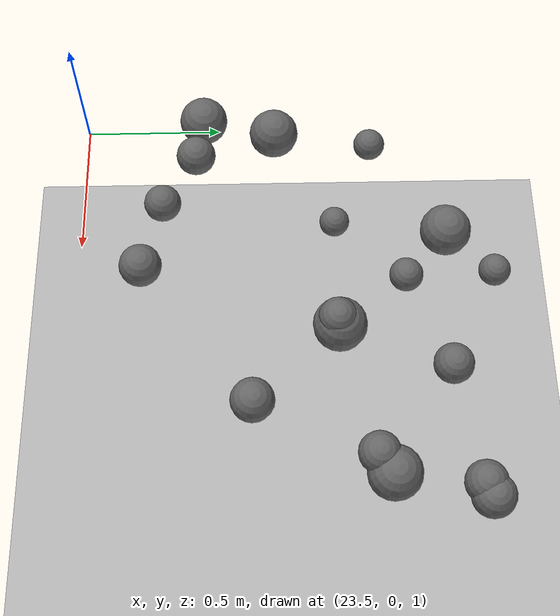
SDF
<sdf version="1.8">
 <world name="extreme_disturbance_parkour">
  <model name="ground_plane">
   <static>true</static>
   <link name="link">
    <collision name="collision">
     <geometry><plane><normal>0 0 1</normal><size>100 100</size></plane></geometry>
     <surface><friction><ode><mu>1.5</mu><mu2>1.5</mu2></ode></friction></surface>
    </collision>
    <visual name="visual">
     <geometry><plane><normal>0 0 1</normal><size>100 100</size></plane></geometry>
     <material><ambient>0.7 0.7 0.7 1</ambient><diffuse>0.7 0.7 0.7 1</diffuse></material>
    </visual>
   </link>
  </model>
  <model name="stone_248">
   <static>true</static>
   <pose>24.3850 0.9309 1.1116 -0.0700 0.1000 0.0000</pose>
   <link name="link">
    <collision name="collision">
     <geometry><sphere><radius>0.0949</radius></sphere></geometry>
     <surface><friction><ode><mu>100.0</mu><mu2>100.0</mu2></ode></friction></surface>
    </collision>
    <visual name="visual">
     <geometry><sphere><radius>0.0949</radius></sphere></geometry>
     <material><ambient>0.3 0.3 0.3 1</ambient><diffuse>0.4 0.4 0.4 1</diffuse></material>
    </visual>
   </link>
  </model>
  <model name="stone_253">
   <static>true</static>
   <pose>23.6235 0.4578 1.2476 -0.0700 0.1000 0.0000</pose>
   <link name="link">
    <collision name="collision">
     <geometry><sphere><radius>0.0852</radius></sphere></geometry>
     <surface><friction><ode><mu>100.0</mu><mu2>100.0</mu2></ode></friction></surface>
    </collision>
    <visual name="visual">
     <geometry><sphere><radius>0.0852</radius></sphere></geometry>
     <material><ambient>0.3 0.3 0.3 1</ambient><diffuse>0.4 0.4 0.4 1</diffuse></material>
    </visual>
   </link>
  </model>
  <model name="stone_256">
   <static>true</static>
   <pose>24.8416 1.0445 1.0904 -0.0700 0.1000 0.0000</pose>
   <link name="link">
    <collision name="collision">
     <geometry><sphere><radius>0.0727</radius></sphere></geometry>
     <surface><friction><ode><mu>100.0</mu><mu2>100.0</mu2></ode></friction></surface>
    </collision>
    <visual name="visual">
     <geometry><sphere><radius>0.0727</radius></sphere></geometry>
     <material><ambient>0.3 0.3 0.3 1</ambient><diffuse>0.4 0.4 0.4 1</diffuse></material>
    </visual>
   </link>
  </model>
  <model name="stone_262">
   <static>true</static>
   <pose>24.1927 1.4790 1.1309 -0.0700 0.1000 0.0000</pose>
   <link name="link">
    <collision name="collision">
     <geometry><sphere><radius>0.0563</radius></sphere></geometry>
     <surface><friction><ode><mu>100.0</mu><mu2>100.0</mu2></ode></friction></surface>
    </collision>
    <visual name="visual">
     <geometry><sphere><radius>0.0563</radius></sphere></geometry>
     <material><ambient>0.3 0.3 0.3 1</ambient><diffuse>0.4 0.4 0.4 1</diffuse></material>
    </visual>
   </link>
  </model>
  <model name="stone_263">
   <static>true</static>
   <pose>24.3793 0.9228 1.1585 -0.0700 0.1000 0.0000</pose>
   <link name="link">
    <collision name="collision">
     <geometry><sphere><radius>0.0684</radius></sphere></geometry>
     <surface><friction><ode><mu>100.0</mu><mu2>100.0</mu2></ode></friction></surface>
    </collision>
    <visual name="visual">
     <geometry><sphere><radius>0.0684</radius></sphere></geometry>
     <material><ambient>0.3 0.3 0.3 1</ambient><diffuse>0.4 0.4 0.4 1</diffuse></material>
    </visual>
   </link>
  </model>
  <model name="stone_283">
   <static>true</static>
   <pose>23.6668 0.7110 1.2252 -0.0700 0.1000 0.0000</pose>
   <link name="link">
    <collision name="collision">
     <geometry><sphere><radius>0.0872</radius></sphere></geometry>
     <surface><friction><ode><mu>100.0</mu><mu2>100.0</mu2></ode></friction></surface>
    </collision>
    <visual name="visual">
     <geometry><sphere><radius>0.0872</radius></sphere></geometry>
     <material><ambient>0.3 0.3 0.3 1</ambient><diffuse>0.4 0.4 0.4 1</diffuse></material>
    </visual>
   </link>
  </model>
  <model name="stone_289">
   <static>true</static>
   <pose>24.0292 1.3192 1.1319 -0.0700 0.1000 0.0000</pose>
   <link name="link">
    <collision name="collision">
     <geometry><sphere><radius>0.0910</radius></sphere></geometry>
     <surface><friction><ode><mu>100.0</mu><mu2>100.0</mu2></ode></friction></surface>
    </collision>
    <visual name="visual">
     <geometry><sphere><radius>0.0910</radius></sphere></geometry>
     <material><ambient>0.3 0.3 0.3 1</ambient><diffuse>0.4 0.4 0.4 1</diffuse></material>
    </visual>
   </link>
  </model>
  <model name="stone_293">
   <static>true</static>
   <pose>23.9631 0.3181 1.2367 -0.0700 0.1000 0.0000</pose>
   <link name="link">
    <collision name="collision">
     <geometry><sphere><radius>0.0649</radius></sphere></geometry>
     <surface><friction><ode><mu>100.0</mu><mu2>100.0</mu2></ode></friction></surface>
    </collision>
    <visual name="visual">
     <geometry><sphere><radius>0.0649</radius></sphere></geometry>
     <material><ambient>0.3 0.3 0.3 1</ambient><diffuse>0.4 0.4 0.4 1</diffuse></material>
    </visual>
   </link>
  </model>
  <model name="stone_296">
   <static>true</static>
   <pose>24.0260 0.9201 1.1970 -0.0700 0.1000 0.0000</pose>
   <link name="link">
    <collision name="collision">
     <geometry><sphere><radius>0.0523</radius></sphere></geometry>
     <surface><friction><ode><mu>100.0</mu><mu2>100.0</mu2></ode></friction></surface>
    </collision>
    <visual name="visual">
     <geometry><sphere><radius>0.0523</radius></sphere></geometry>
     <material><ambient>0.3 0.3 0.3 1</ambient><diffuse>0.4 0.4 0.4 1</diffuse></material>
    </visual>
   </link>
  </model>
  <model name="stone_307">
   <static>true</static>
   <pose>23.7167 1.0555 1.2183 -0.0700 0.1000 0.0000</pose>
   <link name="link">
    <collision name="collision">
     <geometry><sphere><radius>0.0559</radius></sphere></geometry>
     <surface><friction><ode><mu>100.0</mu><mu2>100.0</mu2></ode></friction></surface>
    </collision>
    <visual name="visual">
     <geometry><sphere><radius>0.0559</radius></sphere></geometry>
     <material><ambient>0.3 0.3 0.3 1</ambient><diffuse>0.4 0.4 0.4 1</diffuse></material>
    </visual>
   </link>
  </model>
  <model name="stone_309">
   <static>true</static>
   <pose>24.6692 0.6278 1.1368 -0.0700 0.1000 0.0000</pose>
   <link name="link">
    <collision name="collision">
     <geometry><sphere><radius>0.0763</radius></sphere></geometry>
     <surface><friction><ode><mu>100.0</mu><mu2>100.0</mu2></ode></friction></surface>
    </collision>
    <visual name="visual">
     <geometry><sphere><radius>0.0763</radius></sphere></geometry>
     <material><ambient>0.3 0.3 0.3 1</ambient><diffuse>0.4 0.4 0.4 1</diffuse></material>
    </visual>
   </link>
  </model>
  <model name="stone_315">
   <static>true</static>
   <pose>24.9383 1.3905 1.0607 -0.0700 0.1000 0.0000</pose>
   <link name="link">
    <collision name="collision">
     <geometry><sphere><radius>0.0740</radius></sphere></geometry>
     <surface><friction><ode><mu>100.0</mu><mu2>100.0</mu2></ode></friction></surface>
    </collision>
    <visual name="visual">
     <geometry><sphere><radius>0.0740</radius></sphere></geometry>
     <material><ambient>0.3 0.3 0.3 1</ambient><diffuse>0.4 0.4 0.4 1</diffuse></material>
    </visual>
   </link>
  </model>
  <model name="stone_332">
   <static>true</static>
   <pose>24.9809 1.4129 1.0483 -0.0700 0.1000 0.0000</pose>
   <link name="link">
    <collision name="collision">
     <geometry><sphere><radius>0.0768</radius></sphere></geometry>
     <surface><friction><ode><mu>100.0</mu><mu2>100.0</mu2></ode></friction></surface>
    </collision>
    <visual name="visual">
     <geometry><sphere><radius>0.0768</radius></sphere></geometry>
     <material><ambient>0.3 0.3 0.3 1</ambient><diffuse>0.4 0.4 0.4 1</diffuse></material>
    </visual>
   </link>
  </model>
  <model name="stone_335">
   <static>true</static>
   <pose>24.1930 0.2446 1.2055 -0.0700 0.1000 0.0000</pose>
   <link name="link">
    <collision name="collision">
     <geometry><sphere><radius>0.0742</radius></sphere></geometry>
     <surface><friction><ode><mu>100.0</mu><mu2>100.0</mu2></ode></friction></surface>
    </collision>
    <visual name="visual">
     <geometry><sphere><radius>0.0742</radius></sphere></geometry>
     <material><ambient>0.3 0.3 0.3 1</ambient><diffuse>0.4 0.4 0.4 1</diffuse></material>
    </visual>
   </link>
  </model>
  <model name="stone_338">
   <static>true</static>
   <pose>24.5314 1.3135 1.0955 -0.0700 0.1000 0.0000</pose>
   <link name="link">
    <collision name="collision">
     <geometry><sphere><radius>0.0707</radius></sphere></geometry>
     <surface><friction><ode><mu>100.0</mu><mu2>100.0</mu2></ode></friction></surface>
    </collision>
    <visual name="visual">
     <geometry><sphere><radius>0.0707</radius></sphere></geometry>
     <material><ambient>0.3 0.3 0.3 1</ambient><diffuse>0.4 0.4 0.4 1</diffuse></material>
    </visual>
   </link>
  </model>
  <model name="stone_339">
   <static>true</static>
   <pose>23.7739 0.4326 1.2485 -0.0700 0.1000 0.0000</pose>
   <link name="link">
    <collision name="collision">
     <geometry><sphere><radius>0.0695</radius></sphere></geometry>
     <surface><friction><ode><mu>100.0</mu><mu2>100.0</mu2></ode></friction></surface>
    </collision>
    <visual name="visual">
     <geometry><sphere><radius>0.0695</radius></sphere></geometry>
     <material><ambient>0.3 0.3 0.3 1</ambient><diffuse>0.4 0.4 0.4 1</diffuse></material>
    </visual>
   </link>
  </model>
  <model name="stone_340">
   <static>true</static>
   <pose>24.2159 1.1660 1.1501 -0.0700 0.1000 0.0000</pose>
   <link name="link">
    <collision name="collision">
     <geometry><sphere><radius>0.0593</radius></sphere></geometry>
     <surface><friction><ode><mu>100.0</mu><mu2>100.0</mu2></ode></friction></surface>
    </collision>
    <visual name="visual">
     <geometry><sphere><radius>0.0593</radius></sphere></geometry>
     <material><ambient>0.3 0.3 0.3 1</ambient><diffuse>0.4 0.4 0.4 1</diffuse></material>
    </visual>
   </link>
  </model>
  <model name="stone_356">
   <static>true</static>
   <pose>24.8993 1.0948 1.0526 -0.0700 0.1000 0.0000</pose>
   <link name="link">
    <collision name="collision">
     <geometry><sphere><radius>0.0946</radius></sphere></geometry>
     <surface><friction><ode><mu>100.0</mu><mu2>100.0</mu2></ode></friction></surface>
    </collision>
    <visual name="visual">
     <geometry><sphere><radius>0.0946</radius></sphere></geometry>
     <material><ambient>0.3 0.3 0.3 1</ambient><diffuse>0.4 0.4 0.4 1</diffuse></material>
    </visual>
   </link>
  </model>
 </world>
</sdf>
